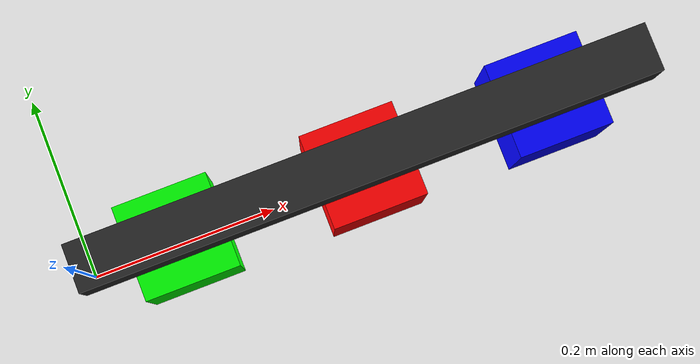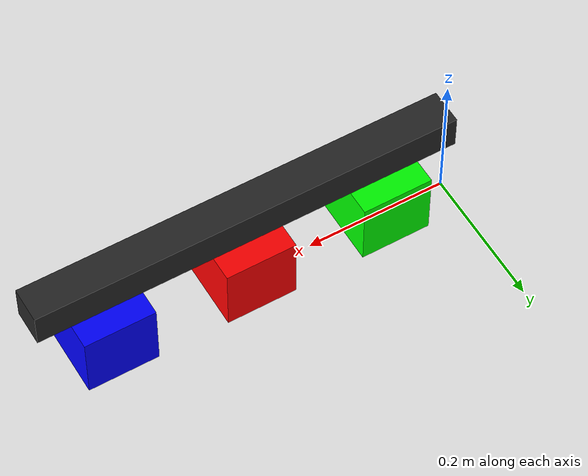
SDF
<?xml version="1.0" ?>
<sdf version="1.9">

  <world name="dynamic_detachable_joint_test">
    <physics name="fast" type="ignored">
      <max_step_size>0.001</max_step_size>
      <real_time_factor>0</real_time_factor>
    </physics>

    <plugin filename="gz-sim-physics-system"
      name="gz::sim::systems::Physics"/>
    <plugin
      filename="gz-sim-user-commands-system"
      name="gz::sim::systems::UserCommands"/>

    <model name="ground_plane">
      <static>true</static>
      <link name="link">
        <collision name="collision">
          <geometry>
            <plane>
              <normal>0 0 1</normal>
              <size>100 100</size>
            </plane>
          </geometry>
        </collision>
      </link>
    </model>

    <!-- Rod z position is slightly above cubes and it's gravity is disabled -->
    <model name="rod">
      <pose>0.30 0 0.14 0 0 0</pose>
      <link name="arm">
        <gravity>false</gravity>
        <inertial>
          <mass>1.0</mass>
        </inertial>
        <collision name="collision">
          <geometry>
            <box>
              <size>0.6 0.05 0.05</size>
            </box>
          </geometry>
        </collision>
        <visual name="visual">
          <geometry>
            <box>
              <size>0.6 0.05 0.05</size>
            </box>
          </geometry>
          <material>
            <ambient>0.15 0.15 0.15 1</ambient>
            <diffuse>0.15 0.15 0.15 1</diffuse>
          </material>
        </visual>
      </link>

      <plugin filename="gz-sim-dynamic-detachable-joint-system"
              name="gz::sim::systems::DynamicDetachableJoint">
        <parent_link>arm</parent_link>
        <service_name>/payload/attach_detach</service_name>
        <output_topic>/payload/child_state</output_topic>
        <attach_distance>0.1</attach_distance> <!-- 10 cm -->
      </plugin>
    </model>

    <!-- 3 cubes red, green, blue spaced evenly apart -->
    <model name="green_cube">
      <pose>0.10 0 0.05 0 0 0</pose>
      <link name="link">
        <inertial>
          <mass>0.2</mass>
        </inertial>
        <collision name="collision">
          <geometry>
            <box>
              <size>0.1 0.1 0.1</size>
            </box>
          </geometry>
        </collision>
        <visual name="visual">
          <geometry>
            <box>
              <size>0.1 0.1 0.1</size>
            </box>
          </geometry>
          <material>
            <ambient>0 1 0 1</ambient>
            <diffuse>0 1 0 1</diffuse>
          </material>
        </visual>
      </link>
    </model>

    <model name="red_cube">
      <pose>0.30 0 0.05 0 0 0</pose>
      <link name="link">
        <inertial>
          <mass>0.2</mass>
        </inertial>
        <collision name="collision">
          <geometry>
            <box>
              <size>0.1 0.1 0.1</size>
            </box>
          </geometry>
        </collision>
        <visual name="visual">
          <geometry>
            <box>
              <size>0.1 0.1 0.1</size>
            </box>
          </geometry>
          <material>
            <ambient>1 0 0 1</ambient>
            <diffuse>1 0 0 1</diffuse>
          </material>
        </visual>
      </link>
    </model>

    <model name="blue_cube">
      <pose>0.50 0 0.05 0 0 0</pose>
      <link name="link">
        <inertial>
          <mass>0.2</mass>
        </inertial>
        <collision name="collision">
          <geometry>
            <box>
              <size>0.1 0.1 0.1</size>
            </box>
          </geometry>
        </collision>
        <visual name="visual">
          <geometry>
            <box>
              <size>0.1 0.1 0.1</size>
            </box>
          </geometry>
          <material>
            <ambient>0 0 1 1</ambient>
            <diffuse>0 0 1 1</diffuse>
          </material>
        </visual>
      </link>
    </model>
  </world>
</sdf>
